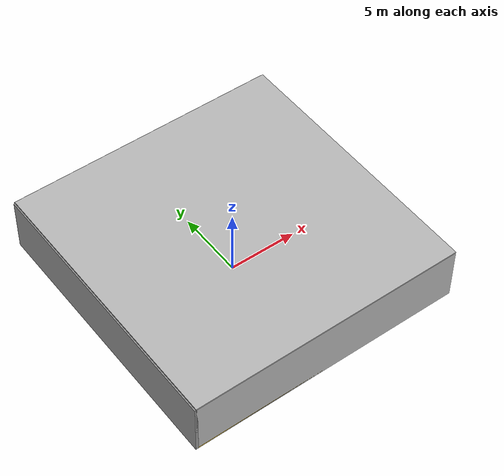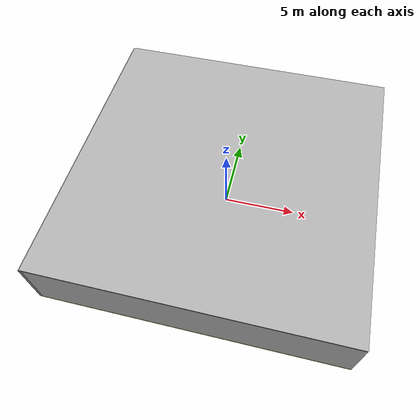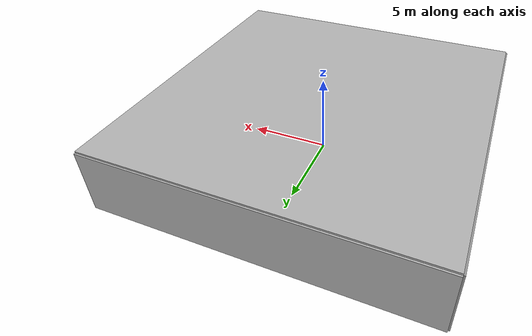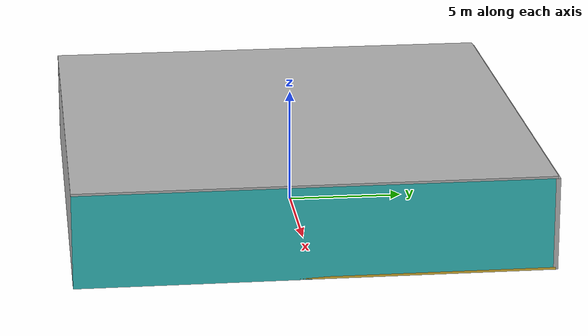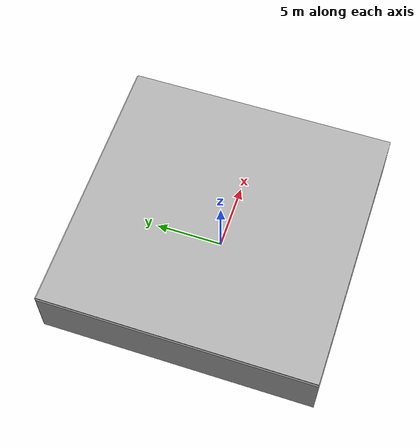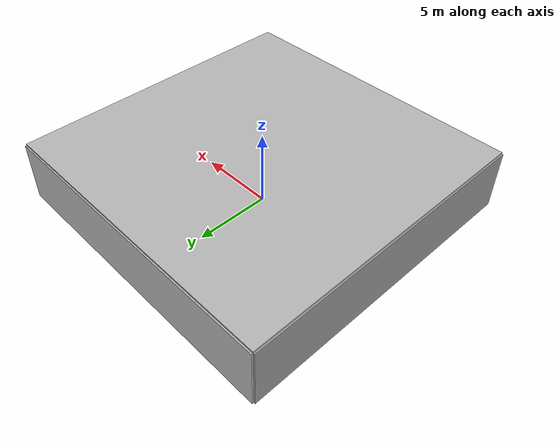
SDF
<sdf version="1.4">
 <world name="default">
  <physics type="ode">
   <max_step_size>0.001</max_step_size>
   <real_time_factor>1</real_time_factor>
   <real_time_update_rate>1000</real_time_update_rate>
   <gravity>0 0 -9.8</gravity>
  </physics>
  <scene><ambient>0.4 0.4 0.4 1</ambient><background>0.7 0.7 0.7 1</background><shadows>1</shadows></scene>
  <model name="Surrounding">
   <static>1</static>
   <link name="Ceiling">
    <collision name="Ceiling_Collision"><geometry><box><size>20 20 0.1</size></box></geometry></collision>
    <visual name="Ceiling_Visual">
     <geometry><box><size>20 20 0.1</size></box></geometry>
     <material>
      <script><uri>file://media/materials/scripts/gazebo.material</uri><name>Gazebo/JointAnchor</name></script>
     </material>
    </visual>
    <pose>0 0 4.05 0 0 0</pose>
   </link>
   <link name="Wall_South">
    <collision name="Wall_South_Collision">
     <geometry><box><size>20 0 4</size></box></geometry>
     <pose>0 0 2 0 -0 0</pose>
    </collision>
    <visual name="Wall_South_Visual">
     <pose>0 0 2 0 -0 0</pose>
     <geometry><box><size>20 0 4</size></box></geometry>
     <material>
      <script><uri>file://media/materials/scripts/gazebo.material</uri><name>Gazebo/LightOff</name></script>
     </material>
    </visual>
    <velocity_decay><linear>0</linear><angular>0</angular></velocity_decay>
    <pose>0 -10 0 0 -0 0</pose>
   </link>
   <link name="Wall_East">
    <collision name="Wall_21_Collision">
     <geometry><box><size>20 0 4</size></box></geometry>
     <pose>0 0 2 0 -0 0</pose>
    </collision>
    <visual name="Wall_21_Visual">
     <pose>0 0 2 0 -0 0</pose>
     <geometry><box><size>20 0 4</size></box></geometry>
     <material>
      <script>
       <uri>file://media/materials/scripts/gazebo.material</uri>
       <name>Gazebo/TurquoiseGlowOutline</name>
      </script>
     </material>
    </visual>
    <velocity_decay><linear>0</linear><angular>0</angular></velocity_decay>
    <pose>10 0 0 0 -0 1.5708</pose>
   </link>
   <link name="Wall_North">
    <collision name="Wall_22_Collision">
     <geometry><box><size>20 0.2 4</size></box></geometry>
     <pose>0 0 2 0 -0 0</pose>
    </collision>
    <visual name="Wall_22_Visual">
     <pose>0 0 2 0 -0 0</pose>
     <geometry><box><size>20 0.2 4</size></box></geometry>
     <material>
      <script><uri>file://media/materials/scripts/gazebo.material</uri><name>Gazebo/JointAnchor</name></script>
     </material>
    </visual>
    <velocity_decay><linear>0</linear><angular>0</angular></velocity_decay>
    <pose>0 10 0 0 -0 0</pose>
   </link>
   <link name="Wall_West">
    <collision name="Wall_23_Collision">
     <geometry><box><size>20 0.2 4</size></box></geometry>
     <pose>0 0 2 0 -0 0</pose>
    </collision>
    <visual name="Wall_23_Visual">
     <pose>0 0 2 0 -0 0</pose>
     <geometry><box><size>20 0.2 4</size></box></geometry>
     <material>
      <script><uri>file://media/materials/scripts/gazebo.material</uri><name>Gazebo/GreyGradientSky</name></script>
     </material>
    </visual>
    <velocity_decay><linear>0</linear><angular>0</angular></velocity_decay>
    <pose>-10 0 0 0 0 -1.5708</pose>
   </link>
   <link name="Ground_link">
    <collision name="collision">
     <pose>0 0 .05 0 -0 0</pose>
     <geometry><box><size>20 20 0.1</size></box></geometry>
    </collision>
    <visual name="visual">
     <pose>0 0 .05 0 -0 0</pose>
     <geometry><box><size>20 20 0.1</size></box></geometry>
     <material>
      <script><uri>file://media/materials/scripts/gazebo.material</uri><name>Gazebo/Gold</name></script>
     </material>
    </visual>
   </link>
   <static>1</static>
  </model>
  <spherical_coordinates>
   <surface_model>EARTH_WGS84</surface_model>
   <latitude_deg>0</latitude_deg>
   <longitude_deg>0</longitude_deg>
   <elevation>0</elevation>
   <heading_deg>0</heading_deg>
  </spherical_coordinates>
  <light name="lightball_0" type="diffuse">
   <diffuse>0.8 0.8 0.8 1</diffuse>
   <specular>0.2 0.2 0.2 1</specular>
   <attenuation>
    <range>100</range>
    <constant>0.7</constant>
    <linear>0.01</linear>
    <quadratic>0.001</quadratic>
   </attenuation>
   <direction>-0.5 0.1 -0.9</direction>
   <pose>9.44913080485 -3.92460349684 0.897335885294 0 0 0</pose>
  </light>
  <light name="lightball_1" type="diffuse">
   <diffuse>0.8 0.8 0.8 1</diffuse>
   <specular>0.2 0.2 0.2 1</specular>
   <attenuation>
    <range>100</range>
    <constant>0.7</constant>
    <linear>0.01</linear>
    <quadratic>0.001</quadratic>
   </attenuation>
   <direction>-0.5 0.1 -0.9</direction>
   <pose>5.52171316304 5.21157032589 3.58641752329 0 0 0</pose>
  </light>
  <light name="lightball_2" type="diffuse">
   <diffuse>0.8 0.8 0.8 1</diffuse>
   <specular>0.2 0.2 0.2 1</specular>
   <attenuation>
    <range>100</range>
    <constant>0.7</constant>
    <linear>0.01</linear>
    <quadratic>0.001</quadratic>
   </attenuation>
   <direction>-0.5 0.1 -0.9</direction>
   <pose>8.06038276686 5.53502921508 2.22992335012 0 0 0</pose>
  </light>
  <light name="lightball_3" type="diffuse">
   <diffuse>0.8 0.8 0.8 1</diffuse>
   <specular>0.2 0.2 0.2 1</specular>
   <attenuation>
    <range>100</range>
    <constant>0.7</constant>
    <linear>0.01</linear>
    <quadratic>0.001</quadratic>
   </attenuation>
   <direction>-0.5 0.1 -0.9</direction>
   <pose>9.58608241156 8.16280039155 3.23203451497 0 0 0</pose>
  </light>
  <light name="lightball_4" type="diffuse">
   <diffuse>0.8 0.8 0.8 1</diffuse>
   <specular>0.2 0.2 0.2 1</specular>
   <attenuation>
    <range>100</range>
    <constant>0.7</constant>
    <linear>0.01</linear>
    <quadratic>0.001</quadratic>
   </attenuation>
   <direction>-0.5 0.1 -0.9</direction>
   <pose>-7.80817168952 -0.883904231131 1.41718757538 0 0 0</pose>
  </light>
  <include><uri>model://cabinet</uri><pose>-8.61528918328 -4.80680196021 0 0 0 3.05500532825</pose></include>
  <include><uri>model://cabinet</uri><pose>-3.43327167498 -7.85960827076 0 0 0 0.935019646598</pose></include>
  <include>
   <uri>model://robocup_3Dsim_goal</uri>
   <pose>-1.47967380769 -5.07108765174 0 0 0 1.61646878179</pose>
  </include>
  <include><uri>model://table</uri><pose>2.37521999572 -1.799635362 0 0 0 1.43450479672</pose></include>
  <include><uri>model://cabinet</uri><pose>1.65591996694 7.49134465635 0 0 0 0.700340144763</pose></include>
 </world>
</sdf>

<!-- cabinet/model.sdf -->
<sdf version="1.5">
  <model name="cabinet">
    <static>true</static>
    <link name="cabinet_bottom_plate">
      <inertial>
        <pose>0 0 -1 0 0 0</pose>
        <inertia>
          <ixx>2.050000</ixx>
          <ixy>0</ixy>
          <ixz>0</ixz>
          <iyy>2.050000</iyy>
          <iyz>0</iyz>
          <izz>2.050000</izz>
        </inertia>
        <mass>25.000000</mass>
      </inertial>
      <collision name="cabinet_bottom_plate_geom">
        <pose>0 0 0.010000 0 0 0</pose>
        <geometry>
          <box>
            <size>0.450000 0.450000 0.020000</size>
          </box>
        </geometry>
      </collision>
      <visual name="cabinet_bottom_plate_geom_visual">
        <pose>0 0 0.010000 0 0 0</pose>
        <geometry>
          <box>
            <size>0.450000 0.450000 0.020000</size>
          </box>
        </geometry>
        <material>
          <script>
            <uri>model://media/materials/scripts/gazebo.material</uri>
            <name>Gazebo/Wood</name>
          </script>
        </material>
      </visual>
      <collision name="cabinet_bottom_plate_geom_cabinet_back_plate">
        <pose>0.235000 0 0.510000 0 0 0</pose>
        <geometry>
          <box>
            <size>0.020000 0.450000 1.020000</size>
          </box>
        </geometry>
      </collision>
      <visual name="cabinet_bottom_plate_geom_cabinet_back_plate_visual">
        <pose>0.235000 0 0.510000 0 0 0</pose>
        <geometry>
          <box>
            <size>0.020000 0.450000 1.020000</size>
          </box>
        </geometry>
        <material>
          <script>
            <uri>model://media/materials/scripts/gazebo.material</uri>
            <name>Gazebo/Wood</name>
          </script>
        </material>
      </visual>
      <collision name="cabinet_bottom_plate_geom_cabinet_left_plate">
        <pose>0 0.235000 0.510000 0 0 0</pose>
        <geometry>
          <box>
            <size>0.450000 0.020000 1.020000</size>
          </box>
        </geometry>
      </collision>
      <visual name="cabinet_bottom_plate_geom_cabinet_left_plate_visual">
        <pose>0 0.235000 0.510000 0 0 0</pose>
        <geometry>
          <box>
            <size>0.450000 0.020000 1.020000</size>
          </box>
        </geometry>
        <material>
          <script>
            <uri>model://media/materials/scripts/gazebo.material</uri>
            <name>Gazebo/Wood</name>
          </script>
        </material>
      </visual>
      <collision name="cabinet_bottom_plate_geom_cabinet_middle_plate">
        <pose>0 0 0.510000 0 0 0</pose>
        <geometry>
          <box>
            <size>0.450000 0.450000 0.020000</size>
          </box>
        </geometry>
      </collision>
      <visual name="cabinet_bottom_plate_geom_cabinet_middle_plate_visual">
        <pose>0 0 0.510000 0 0 0</pose>
        <geometry>
          <box>
            <size>0.450000 0.450000 0.020000</size>
          </box>
        </geometry>
        <material>
          <script>
            <uri>model://media/materials/scripts/gazebo.material</uri>
            <name>Gazebo/Wood</name>
          </script>
        </material>
      </visual>
      <collision name="cabinet_bottom_plate_geom_cabinet_right_plate">
        <pose>0 -0.235000 0.510000 0 0 0</pose>
        <geometry>
          <box>
            <size>0.450000 0.020000 1.020000</size>
          </box>
        </geometry>
      </collision>
      <visual name="cabinet_bottom_plate_geom_cabinet_right_plate_visual">
        <pose>0 -0.235000 0.510000 0 0 0</pose>
        <geometry>
          <box>
            <size>0.450000 0.020000 1.020000</size>
          </box>
        </geometry>
        <material>
          <script>
            <uri>model://media/materials/scripts/gazebo.material</uri>
            <name>Gazebo/Wood</name>
          </script>
        </material>
      </visual>
      <collision name="cabinet_bottom_plate_geom_cabinet_top_plate">
        <pose>0 0 1.010000 0 0 0</pose>
        <geometry>
          <box>
            <size>0.450000 0.450000 0.020000</size>
          </box>
        </geometry>
      </collision>
      <visual name="cabinet_bottom_plate_geom_cabinet_top_plate_visual">
        <pose>0 0 1.010000 0 0 0</pose>
        <geometry>
          <box>
            <size>0.450000 0.450000 0.020000</size>
          </box>
        </geometry>
        <material>
          <script>
            <uri>model://media/materials/scripts/gazebo.material</uri>
            <name>Gazebo/Wood</name>
          </script>
        </material>
      </visual>
    </link>
  </model>
</sdf>

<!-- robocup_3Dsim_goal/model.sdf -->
<sdf version="1.5">
  <model name="robocup_3d_goal">
    <static>true</static>
    <link name="left_post">
      <pose>0 1.05 0.45 0 0 0</pose>
      <collision name="collision">
        <geometry>
          <cylinder>
            <radius>0.05</radius>
            <length>0.9</length>
          </cylinder>
        </geometry>
      </collision>
      <visual name="visual">
        <geometry>
          <cylinder>
            <radius>0.05</radius>
            <length>0.9</length>
          </cylinder>
        </geometry>
        <material>
          <script>
            <uri>file://media/materials/scripts/gazebo.material</uri>
            <name>Gazebo/ZincYellow</name>
          </script>
        </material>
      </visual>
    </link>
    <link name="left_support_horiz_lower">
      <pose>0.30 1.05 0.01 0 0 0</pose>
      <collision name="collision">
        <geometry>
          <box>
            <size>0.50 0.02 0.02</size>
          </box>
        </geometry>
      </collision>
      <visual name="visual">
        <geometry>
          <box>
            <size>0.50 0.02 0.02</size>
          </box>
        </geometry>
        <material>
          <script>
            <uri>file://media/materials/scripts/gazebo.material</uri>
            <name>Gazebo/White</name>
          </script>
        </material>
      </visual>
    </link>
    <link name="left_support_horiz_upper">
      <pose>0.30 1.05 0.79 0 0 0</pose>
      <collision name="collision">
        <geometry>
          <box>
            <size>0.50 0.02 0.02</size>
          </box>
        </geometry>
      </collision>
      <visual name="visual">
        <geometry>
          <box>
            <size>0.50 0.02 0.02</size>
          </box>
        </geometry>
        <material>
          <script>
            <uri>file://media/materials/scripts/gazebo.material</uri>
            <name>Gazebo/White</name>
          </script>
        </material>
      </visual>
    </link>
    <link name="left_support_vertical">
      <pose>0.56 1.05 0.4 0 1.5708 0</pose>
      <collision name="collision">
        <geometry>
          <box>
            <size>0.80 0.02 0.02</size>
          </box>
        </geometry>
      </collision>
      <visual name="visual">
        <geometry>
          <box>
            <size>0.80 0.02 0.02</size>
          </box>
        </geometry>
        <material>
          <script>
            <uri>file://media/materials/scripts/gazebo.material</uri>
            <name>Gazebo/White</name>
          </script>
        </material>
      </visual>
    </link>
    <link name="right_support_horiz_lower">
      <pose>0.30 -1.05 0.01 0 0 0</pose>
      <collision name="collision">
        <geometry>
          <box>
            <size>0.50 0.02 0.02</size>
          </box>
        </geometry>
      </collision>
      <visual name="visual">
        <geometry>
          <box>
            <size>0.50 0.02 0.02</size>
          </box>
        </geometry>
        <material>
          <script>
            <uri>file://media/materials/scripts/gazebo.material</uri>
            <name>Gazebo/White</name>
          </script>
        </material>
      </visual>
    </link>
    <link name="right_support_horiz_upper">
      <pose>0.30 -1.05 0.79 0 0 0</pose>
      <collision name="collision">
        <geometry>
          <box>
            <size>0.50 0.02 0.02</size>
          </box>
        </geometry>
      </collision>
      <visual name="visual">
        <geometry>
          <box>
            <size>0.50 0.02 0.02</size>
          </box>
        </geometry>
        <material>
          <script>
            <uri>file://media/materials/scripts/gazebo.material</uri>
            <name>Gazebo/White</name>
          </script>
        </material>
      </visual>
    </link>
    <link name="right_support_vertical">
      <pose>0.56 -1.05 0.4 0 1.5708 0</pose>
      <collision name="collision">
        <geometry>
          <box>
            <size>0.80 0.02 0.02</size>
          </box>
        </geometry>
      </collision>
      <visual name="visual">
        <geometry>
          <box>
            <size>0.80 0.02 0.02</size>
          </box>
        </geometry>
        <material>
          <script>
            <uri>file://media/materials/scripts/gazebo.material</uri>
            <name>Gazebo/White</name>
          </script>
        </material>
      </visual>
    </link>
    <link name="center_support_horiz_lower">
      <pose>0.56 0 0.01 0 1.5708 0</pose>
      <collision name="collision">
        <geometry>
          <box>
            <size>0.02 2.08 0.02</size>
          </box>
        </geometry>
      </collision>
      <visual name="visual">
        <geometry>
          <box>
            <size>0.02 2.08 0.02</size>
          </box>
        </geometry>
        <material>
          <script>
            <uri>file://media/materials/scripts/gazebo.material</uri>
            <name>Gazebo/White</name>
          </script>
        </material>
      </visual>
    </link>
    <link name="center_support_horiz_upper">
      <pose>0.56 0 0.79 0 1.5708 0</pose>
      <collision name="collision">
        <geometry>
          <box>
            <size>0.02 2.08 0.02</size>
          </box>
        </geometry>
      </collision>
      <visual name="visual">
        <geometry>
          <box>
            <size>0.02 2.08 0.02</size>
          </box>
        </geometry>
        <material>
          <script>
            <uri>file://media/materials/scripts/gazebo.material</uri>
            <name>Gazebo/White</name>
          </script>
        </material>
      </visual>
    </link>
    <link name="right_post">
      <pose>0 -1.05 0.45 0 0 0</pose>
      <collision name="collision">
        <geometry>
          <cylinder>
            <radius>0.05</radius>
            <length>0.9</length>
          </cylinder>
        </geometry>
      </collision>
      <visual name="visual">
        <geometry>
          <cylinder>
            <radius>0.05</radius>
            <length>0.9</length>
          </cylinder>
        </geometry>
        <material>
          <script>
            <uri>file://media/materials/scripts/gazebo.material</uri>
            <name>Gazebo/ZincYellow</name>
          </script>
        </material>
      </visual>
    </link>
    <link name="crossbar">
      <pose>0 0 0.85 1.57 1.57 0</pose>
      <collision name="collision">
        <geometry>
          <cylinder>
            <radius>0.05</radius>
            <length>2.0</length>
          </cylinder>
        </geometry>
      </collision>
      <visual name="visual">
        <geometry>
          <cylinder>
            <radius>0.05</radius>
            <length>2.0</length>
          </cylinder>
        </geometry>
        <material>
          <script>
            <uri>file://media/materials/scripts/gazebo.material</uri>
            <name>Gazebo/ZincYellow</name>
          </script>
        </material>
      </visual>
    </link>
    <link name="center_net">
      <pose>0.56 0 0.40 0 0 0</pose>
      <collision name="collision">
        <geometry>
          <box>
            <size>0.01 2.1 0.80</size>
          </box>
        </geometry>
      </collision>
      <visual name="visual">
        <geometry>
          <box>
            <size>0.01 2.1 0.80</size>
          </box>
        </geometry>
        <material>
          <script>
            <uri>model://../model_source/models/robocup09_spl_field/materials/scripts/</uri>
            <uri>model://../model_source/models/robocup09_spl_field/materials/textures/</uri>
            <name>RoboCup/Net</name>
          </script>
        </material>
      </visual>
    </link>
    <link name="left_net">
      <pose>0.30 1.05 0.40 0 0 0</pose>
      <collision name="collision">
        <geometry>
          <box>
            <size>0.50 0.01 0.76</size>
          </box>
        </geometry>
      </collision>
      <visual name="visual">
        <geometry>
          <box>
            <size>0.50 0.01 0.76</size>
          </box>
        </geometry>
        <material>
          <script>
            <uri>model://../model_source/models/robocup09_spl_field/materials/scripts/</uri>
            <uri>model://../model_source/models/robocup09_spl_field/materials/textures/</uri>
            <name>RoboCup/Net</name>
          </script>
        </material>
      </visual>
    </link>
    <link name="right_net">
      <pose>0.30 -1.05 0.40 0 0 0</pose>
      <collision name="collision">
        <geometry>
          <box>
            <size>0.50 0.01 0.76</size>
          </box>
        </geometry>
      </collision>
      <visual name="visual">
        <geometry>
          <box>
            <size>0.50 0.01 0.76</size>
          </box>
        </geometry>
        <material>
          <script>
            <uri>model://../model_source/models/robocup09_spl_field/materials/scripts/</uri>
            <uri>model://../model_source/models/robocup09_spl_field/materials/textures/</uri>
            <name>RoboCup/Net</name>
          </script>
        </material>
      </visual>
    </link>
  </model>
</sdf>

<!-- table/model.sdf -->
<sdf version="1.5">
  <model name="table">
    <static>true</static>
    <link name="link">
      <collision name="surface">
        <pose>0 0 1.0 0 0 0</pose>
        <geometry>
          <box>
            <size>1.5 0.8 0.03</size>
          </box>
        </geometry>
        <surface>
          <friction>
            <ode>
              <mu>0.6</mu>
              <mu2>0.6</mu2>
            </ode>
          </friction>
        </surface>
      </collision>
      <visual name="visual1">
        <pose>0 0 1.0 0 0 0</pose>
        <geometry>
          <box>
            <size>1.5 0.8 0.03</size>
          </box>
        </geometry>
        <material>
          <script>
            <uri>model://media/materials/scripts/gazebo.material</uri>
            <name>Gazebo/Wood</name>
          </script>
        </material>
      </visual>
      <collision name="front_left_leg">
        <pose>0.68 0.38 0.5 0 0 0</pose>
        <geometry>
          <cylinder>
            <radius>0.02</radius>
            <length>1.0</length>
          </cylinder>
        </geometry>
      </collision>
      <visual name="front_left_leg">
        <pose>0.68 0.38 0.5 0 0 0</pose>
        <geometry>
          <cylinder>
            <radius>0.02</radius>
            <length>1.0</length>
          </cylinder>
        </geometry>
        <material>
          <script>
            <uri>model://media/materials/scripts/gazebo.material</uri>
            <name>Gazebo/Grey</name>
          </script>
        </material>
      </visual>
      <collision name="front_right_leg">
        <pose>0.68 -0.38 0.5 0 0 0</pose>
        <geometry>
          <cylinder>
            <radius>0.02</radius>
            <length>1.0</length>
          </cylinder>
        </geometry>
      </collision>
      <visual name="front_right_leg">
        <pose>0.68 -0.38 0.5 0 0 0</pose>
        <geometry>
          <cylinder>
            <radius>0.02</radius>
            <length>1.0</length>
          </cylinder>
        </geometry>
        <material>
          <script>
            <uri>model://media/materials/scripts/gazebo.material</uri>
            <name>Gazebo/Grey</name>
          </script>
        </material>
      </visual>
      <collision name="back_right_leg">
        <pose>-0.68 -0.38 0.5 0 0 0</pose>
        <geometry>
          <cylinder>
            <radius>0.02</radius>
            <length>1.0</length>
          </cylinder>
        </geometry>
      </collision>
      <visual name="back_right_leg">
        <pose>-0.68 -0.38 0.5 0 0 0</pose>
        <geometry>
          <cylinder>
            <radius>0.02</radius>
            <length>1.0</length>
          </cylinder>
        </geometry>
        <material>
          <script>
            <uri>model://media/materials/scripts/gazebo.material</uri>
            <name>Gazebo/Grey</name>
          </script>
        </material>
      </visual>
      <collision name="back_left_leg">
        <pose>-0.68 0.38 0.5 0 0 0</pose>
        <geometry>
          <cylinder>
            <radius>0.02</radius>
            <length>1.0</length>
          </cylinder>
        </geometry>
      </collision>
      <visual name="back_left_leg">
        <pose>-0.68 0.38 0.5 0 0 0</pose>
        <geometry>
          <cylinder>
            <radius>0.02</radius>
            <length>1.0</length>
          </cylinder>
        </geometry>
        <material>
          <script>
            <uri>model://media/materials/scripts/gazebo.material</uri>
            <name>Gazebo/Grey</name>
          </script>
        </material>
      </visual>
    </link>
  </model>
</sdf>
